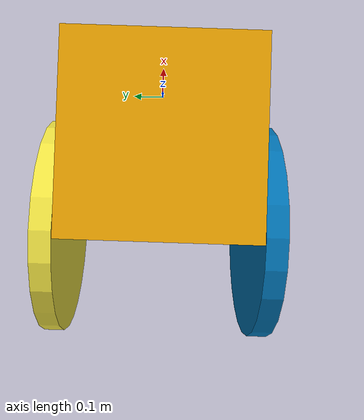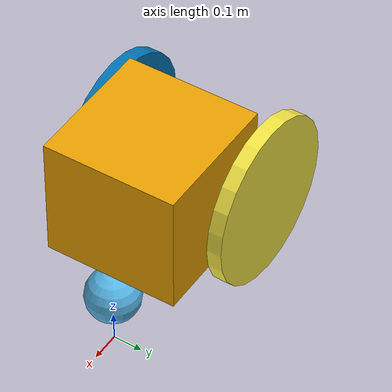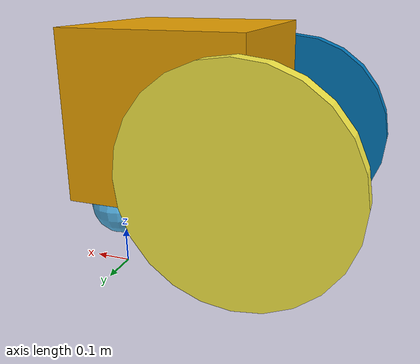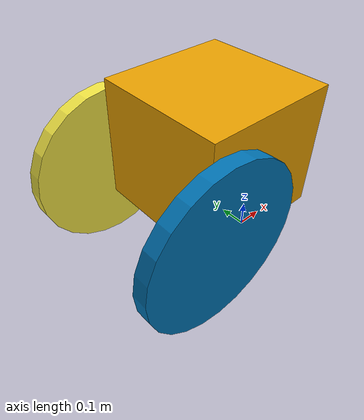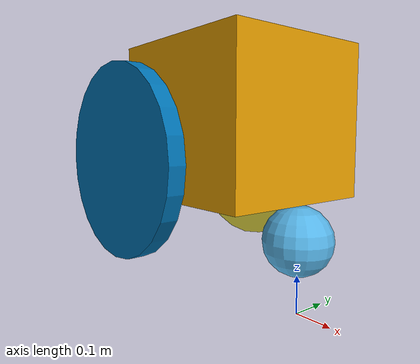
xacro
<?xml version='1.0'?>

<robot name="wheel" xmlns:xacro="http://www.ros.org/wiki/xacro">
  <link name='base_link'>
    <pose>0 0 0 0 0 0</pose>

    <inertial>
      <mass value="15.0"/>
      <origin xyz="-0.215 0 0.39" rpy=" 0 0 0"/>
      <inertia
          ixx="0.473625" ixy="0" ixz="0"
          iyy="0.47928125" iyz="0"
          izz="0.51190625"
      />
    </inertial>

    <collision name='collision'>
      <origin xyz="-0.215 0 0.39" rpy=" 0 0 0"/>
      <geometry>
        <box size="0.455 0.45 0.42"/>
      </geometry>
    </collision>

    <visual name='base_link_visual'>
      <origin xyz="-0.215 0 0.39" rpy=" 0 0 0"/>
      <geometry>
        <box size="0.455 0.45 0.42"/>
      </geometry>
    </visual>

</link>

 <link name="caster_link">
    <collision >
      <origin xyz="0 0 0.09" rpy=" 0 0 0"/>
      <geometry>
        <sphere radius="0.09"/>
      </geometry>
      <surface>
        <friction>
          <ode>
            <mu>0</mu>
            <mu2>0</mu2>
            <slip1>1.0</slip1>
            <slip2>1.0</slip2>
          </ode>
        </friction>
      </surface>
    </collision>

    <visual >
      <origin xyz="0 0 0.09" rpy=" 0 0 0"/>
      <geometry>
        <sphere radius="0.09"/>
      </geometry>
    </visual>

 <inertial>
      <origin xyz="0 0 0"/>
      <mass value="0.500"/>
      <inertia ixx="0.00025" ixy="0" ixz="0" iyy="0.00025"  iyz="0" izz="0.00025"/>
    </inertial>

  </link>
    <joint name="caster_joint" type="fixed">
    <parent link="base_link"/>
    <child link="caster_link"/>
    <origin xyz="0 0 0"/>
  </joint>

<link name="base_footprint"/>
  <joint name="base_link_joint" type="fixed">
    <parent link="base_footprint"/>
    <child link="base_link"/>
    <origin xyz="0 0 0.100"/>
  </joint>

  <link name="left_wheel">
    <!--origin xyz="0.1 0.13 0.1" rpy="0 1.5707 1.5707"/-->
    <collision name="collision">
      <origin xyz="0 0 0" rpy="0 0 0"/>
      <geometry>
        <cylinder radius="0.2794" length="0.05"/>
      </geometry>
    </collision>
    <visual name="left_wheel_visual">
      <origin xyz="0 0 0" rpy="0 0 0"/>
      <geometry>
        <cylinder radius="0.2794" length="0.05"/>
      </geometry>
    </visual>
    <inertial>
      <origin xyz="0 0 0" rpy="0 0 0"/>
      <mass value="5"/>
      <inertia
        ixx=".09904" ixy="0.0" ixz="0.0"
        iyy=".09904" iyz="0.0"
        izz=".196"/>
    </inertial>
  </link>

  <link name="right_wheel">
    <!--origin xyz="0.1 -0.13 0.1" rpy="0 1.5707 1.5707"/-->
    <collision name="collision">
      <origin xyz="0 0 0" rpy="0 0 0"/>
      <geometry>
        <cylinder radius="0.2794" length="0.05"/>
      </geometry>
    </collision>
    <visual name="right_wheel_visual">
      <origin xyz="0 0 0" rpy="0 0 0"/>
      <geometry>
        <cylinder radius="0.2794" length="0.05"/>
      </geometry>
    </visual>
    <inertial>
      <origin xyz="0 0 0" rpy="0 0 0"/>
      <mass value="5"/>
      <inertia
        ixx=".09904" ixy="0.0" ixz="0.0"
        iyy=".09904" iyz="0.0"
        izz=".196"/>
    </inertial>
  </link>

  <joint type="continuous" name="left_wheel_hinge">
    <origin xyz="-0.43 0.26 0.28" rpy="-1.5707 0 0"/>
    <!--origin xyz="0.1 0.13 0" rpy="0 1.5707 1.5707"/-->
    <child link="left_wheel"/>
    <parent link="base_link"/>
    <axis xyz="0 0 1"/>
    <limit effort="10000" velocity="1000"/>
    <joint_properties damping="1.0" friction="1.0"/>
  </joint>

  <joint type="continuous" name="right_wheel_hinge">
    <origin xyz="-0.43 -0.26 0.28" rpy="1.5707 0 0"/>
    <!--origin xyz="0.1 -0.13 0" rpy="0 1.5707 1.5707"/-->
    <child link="right_wheel"/>
    <parent link="base_link"/>
    <axis xyz="0 0 1" rpy="0 0 0"/>
    <limit effort="10000" velocity="1000"/>
    <joint_properties damping="1.0" friction="1.0"/>
  </joint>

<!-- Hokuyo Laser -->
  <link name="hokuyo_link">
  </link>

  <joint name="hokuyo_joint" type="fixed">
    <axis xyz="0 0 0" />
    <origin xyz="0.1007 0 0.0558" rpy="0 0 0"/>
    <parent link="base_link"/>
    <child link="hokuyo_link"/>
  </joint>

 <link name="base_imu_link">

  </link>

 <joint name="imu_joint" type="fixed">
    <axis xyz="0 0 0" />
    <origin xyz="0.1007 0 0.0558" rpy="0 0 0"/>
    <parent link="base_link"/>
    <child link="base_imu_link"/>
  </joint>

  <gazebo>
    <plugin name="differential_drive_controller" filename="libgazebo_ros_diff_drive.so">
      <legacyMode>false</legacyMode>
      <alwaysOn>true</alwaysOn>
      <updateRate>20</updateRate>
      <leftJoint>left_wheel_hinge</leftJoint>
      <rightJoint>right_wheel_hinge</rightJoint>
      <wheelSeparation>0.4</wheelSeparation>
      <wheelDiameter>0.1</wheelDiameter>
      <torque>20</torque>
      <commandTopic>cmd_vel</commandTopic>
      <odometryTopic>odom</odometryTopic>
      <odometryFrame>odom</odometryFrame>
      <robotBaseFrame>chassis</robotBaseFrame>
    </plugin>
  </gazebo>

  <gazebo reference="chassis">
      <material>Gazebo/Orange</material>
    </gazebo>

</robot>
